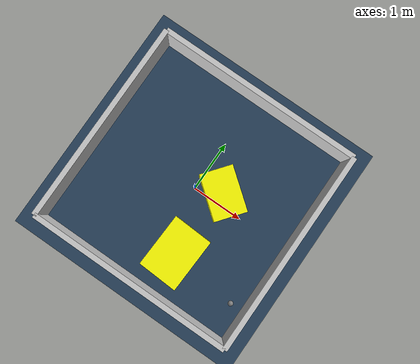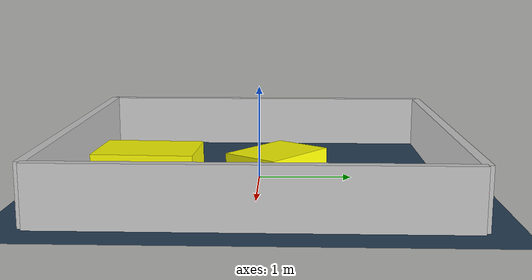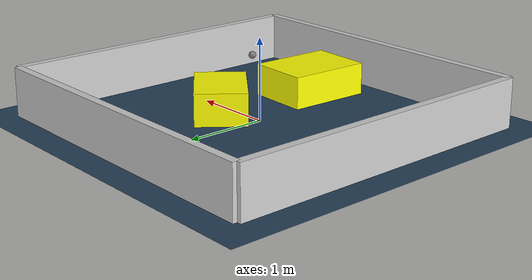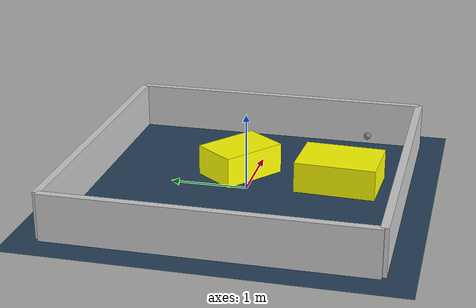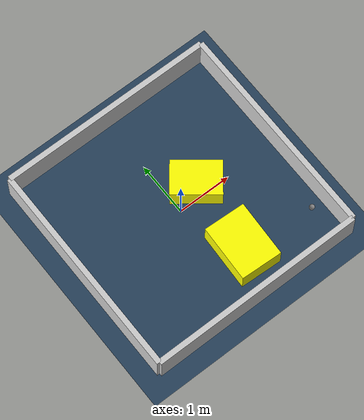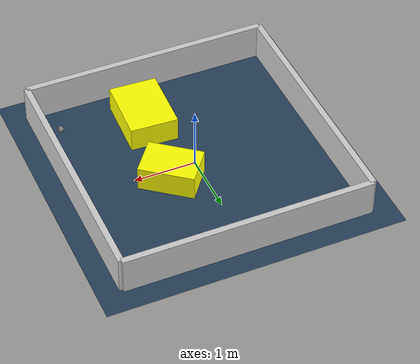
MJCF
<?xml version="1.0" ?>
<mujoco model="generated_environment">
  <option timestep="0.01" integrator="RK4" cone="elliptic"/>
  <default>
    <geom density="1"/>
  </default>
  <asset>
    <texture builtin="gradient" height="3072" rgb1="0.3 0.5 0.7" rgb2="0 0 0" type="skybox" width="512"/>
    <texture builtin="checker" height="300" mark="edge" markrgb="0.8 0.8 0.8" name="groundplane" rgb1="0.2 0.3 0.4" rgb2="0.1 0.2 0.3" type="2d" width="300"/>
    <material name="groundplane" reflectance="0.2" texrepeat="5 5" texture="groundplane" texuniform="true"/>
    <material name="robot" rgba="0.0 1.0 0.0 1"/>
  </asset>
  <worldbody>
    <light dir="0 0 -1" directional="true" pos="0 0 1.5"/>
    <geom condim="4" friction="1.0 0.005 0.001" material="groundplane" name="floor" size="0 0 0.05" type="plane"/>
    <body name="walls">
      <geom name="wall_1" condim="4" pos="-2.0 0.0 0.3" rgba="0.800000011920929 0.800000011920929 0.800000011920929 1.0" size="0.05 2.0 0.3" type="box"/>
      <geom name="wall_2" condim="4" pos="2.0 0.0 0.3" rgba="0.800000011920929 0.800000011920929 0.800000011920929 1.0" size="0.05 2.0 0.3" type="box"/>
      <geom name="wall_3" condim="4" pos="0.0 -2.0 0.3" rgba="0.800000011920929 0.800000011920929 0.800000011920929 1.0" size="2.0 0.05 0.3" type="box"/>
      <geom name="wall_4" condim="4" pos="0.0 2.0 0.3" rgba="0.800000011920929 0.800000011920929 0.800000011920929 1.0" size="2.0 0.05 0.3" type="box"/>
    </body>
    <body name="robot">
      <joint name="joint_x" type="slide" pos="0 0 0" axis="1 0 0"/>
      <joint name="joint_y" type="slide" pos="0 0 0" axis="0 1 0"/>
      <geom name="robot" type="sphere" pos="1.7029864774927739 -1.3358521413751958 0.2" size="0.05" mass="5." friction="1.0 0.005 0.0001" condim="4"/>
      <site name="sensor_ball"/>
    </body>
    <body name="obstacle_1_movable">
      <geom name="obstacle_1_movable" condim="4" pos="0.38132548588379156 -1.1554393370394003 0.2" euler="0 0 267.3317086772336" friction="1.0 0.005 0.001" rgba="1 1 0 1" size="0.5249255265968134 0.38604278635726774 0.2" type="box" mass="0.1"/>
      <joint type="free"/>
    </body>
    <body name="obstacle_2_movable">
      <geom name="obstacle_2_movable" condim="4" pos="0.4788722278079125 0.19804556016422992 0.2" euler="0 0 322.0035592826832" friction="1.0 0.005 0.001" rgba="1 1 0 1" size="0.44436547104148305 0.31392649324539 0.2" type="box" mass="0.1"/>
      <joint type="free"/>
    </body>
  </worldbody>
  <actuator>
    <motor name="actuator_x" joint="joint_x" gear="1" ctrlrange="-1 1"/>
    <motor name="actuator_y" joint="joint_y" gear="1" ctrlrange="-1 1"/>
  </actuator>
</mujoco>
